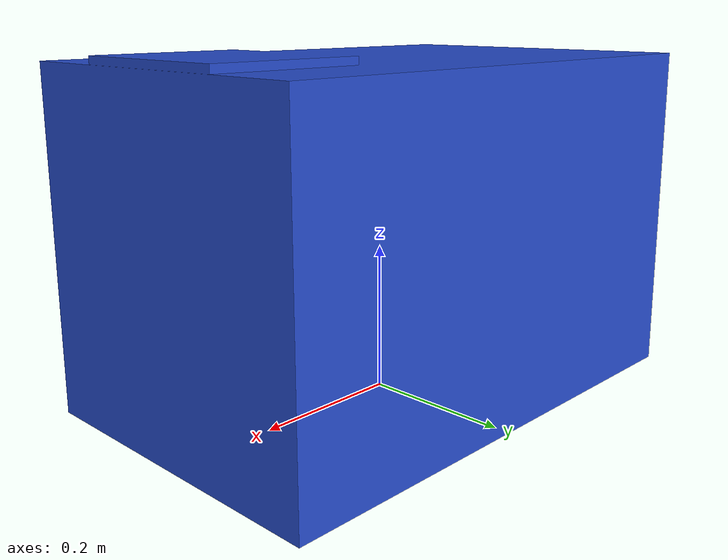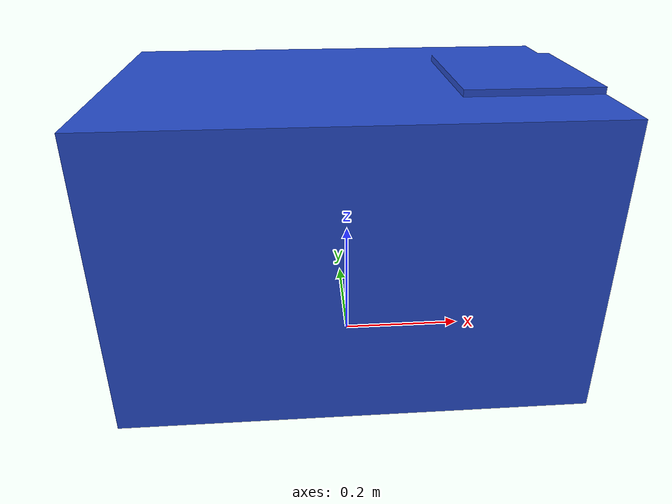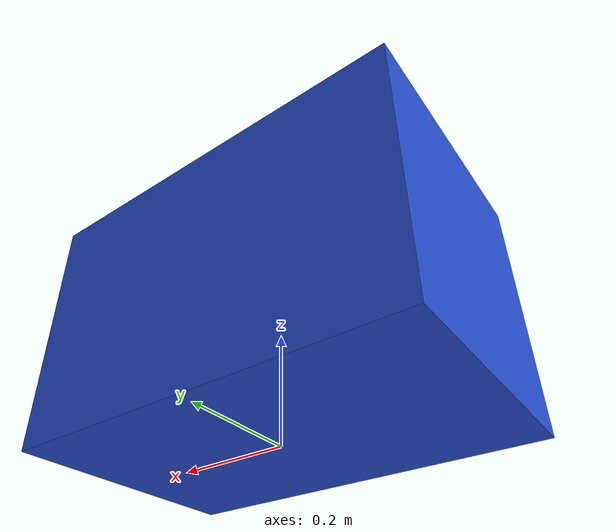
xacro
<?xml version="1.0"?>
<robot name="base_platform" xmlns:xacro="http://ros.org/wiki/xacro">

    <link name="robot_barmen_base_link">
        <visual>
            <geometry>
                <mesh filename="package://rb_description/meshes/platform.stl"/>
            </geometry>
            <origin xyz="0 0 0" rpy="0 0 0"/>
            <material name="blue"/>
        </visual>
        <collision>
            <geometry>
                <mesh filename="package://rb_description/meshes/platform.stl"/>
            </geometry>
            <origin xyz="0 0 0" rpy="0 0 0"/>
        </collision>
    </link>

</robot>
